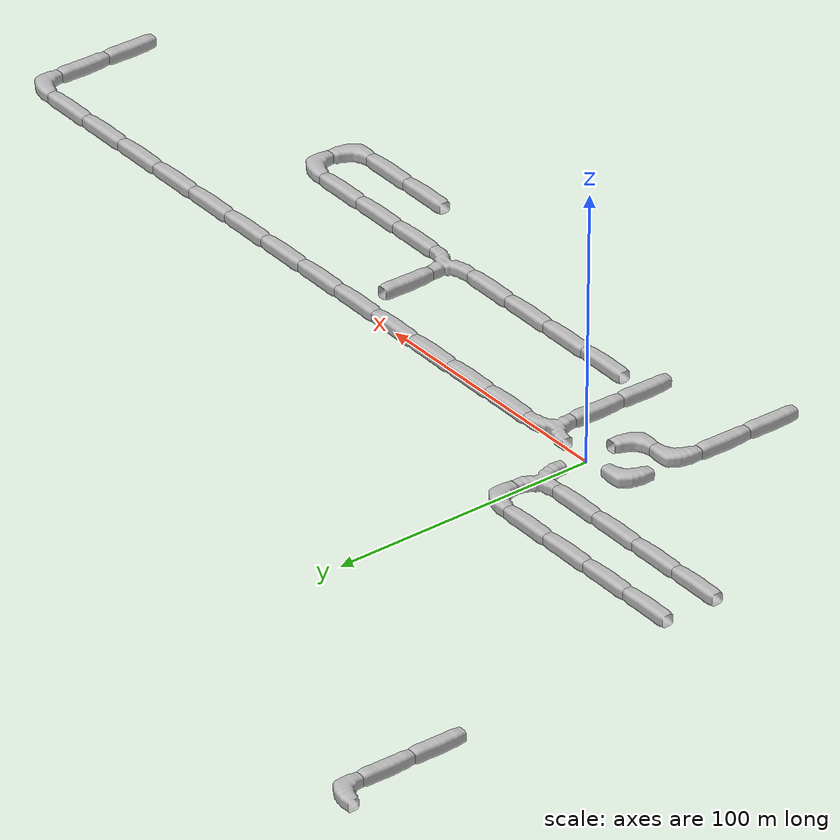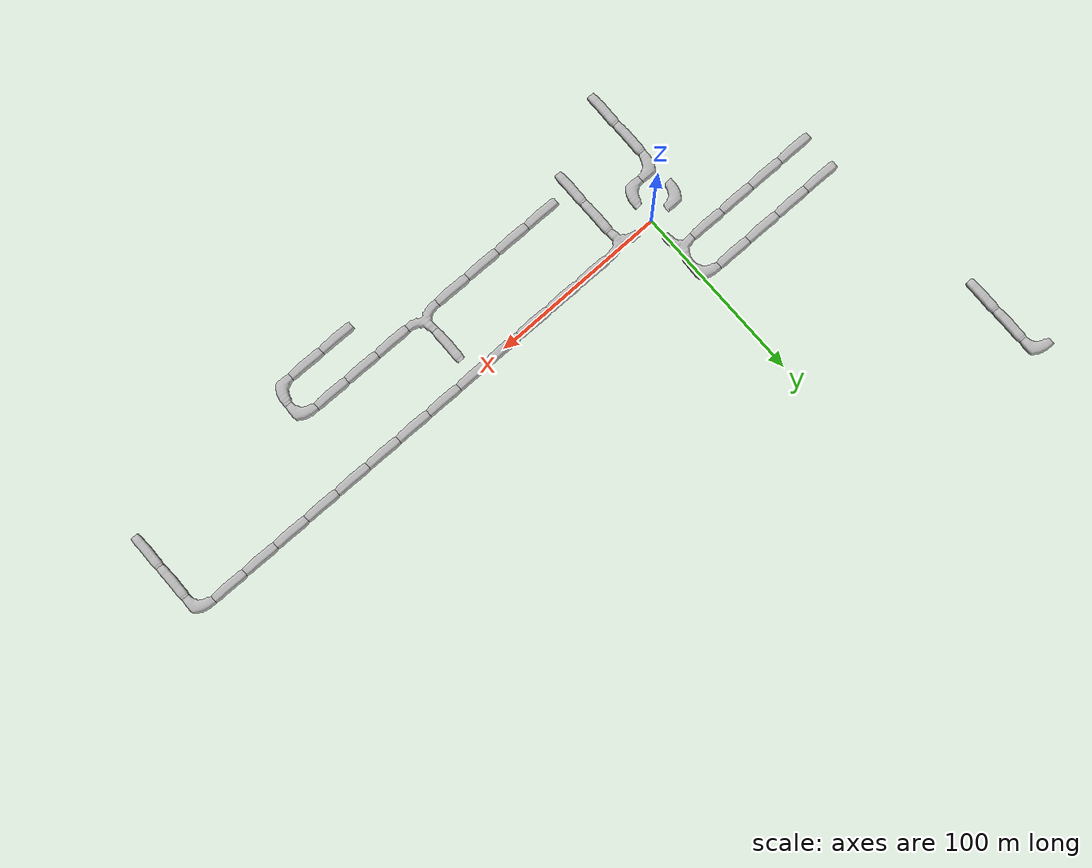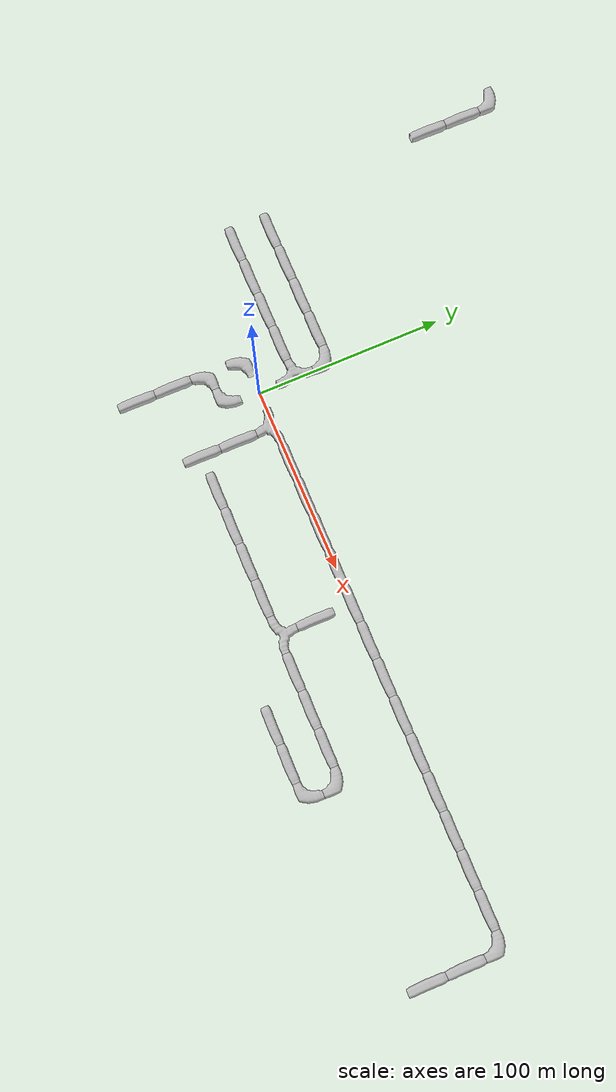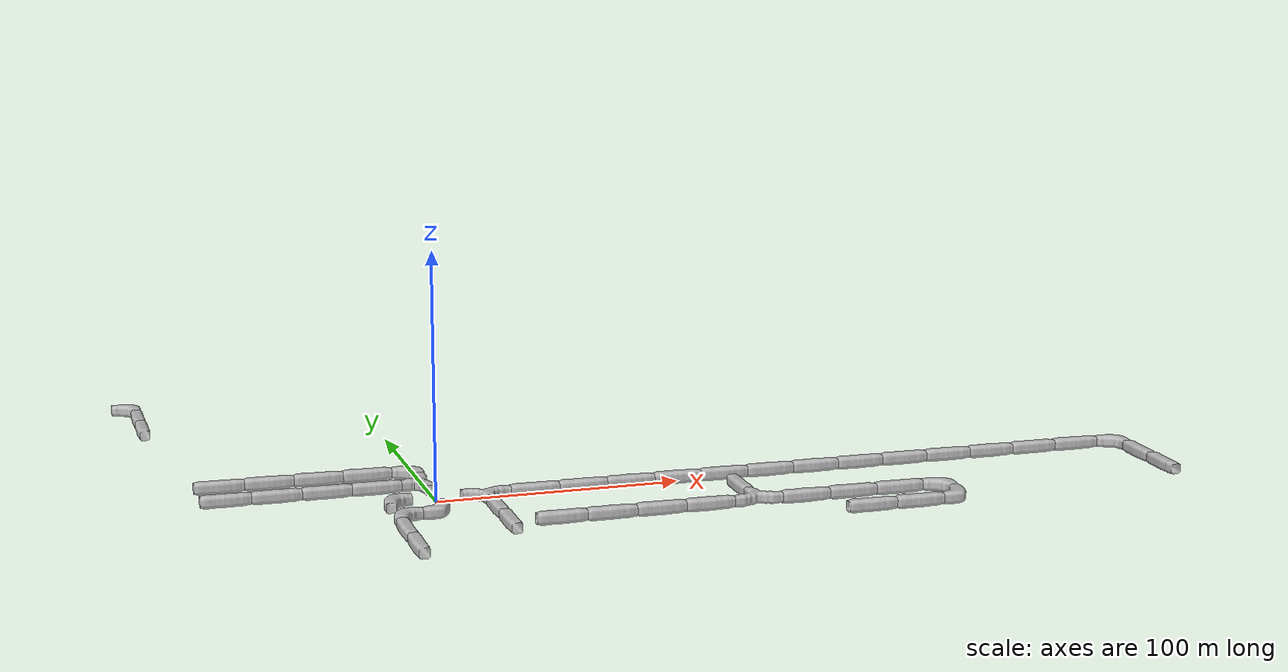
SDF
<sdf version="1.6">
 <world name="cave_4000">
  <include>
   <static>true</static>
   <name>cave_1_0</name>
   <pose>20 0 0 0 0 3.141592653589793</pose>
   <uri>model://cave_3way_20m</uri>
  </include>
  <include>
   <static>true</static>
   <name>cave_2_0</name>
   <pose>40 0 0 0 0 1.5707963267948966</pose>
   <uri>model://cave_straight_20m</uri>
  </include>
  <include>
   <static>true</static>
   <name>cave_3_0</name>
   <pose>60 0 0 0 0 1.5707963267948966</pose>
   <uri>model://cave_straight_20m</uri>
  </include>
  <include>
   <static>true</static>
   <name>cave_4_0</name>
   <pose>80 0 0 0 0 1.5707963267948966</pose>
   <uri>model://cave_straight_20m</uri>
  </include>
  <include>
   <static>true</static>
   <name>cave_5_0</name>
   <pose>100 0 0 0 0 1.5707963267948966</pose>
   <uri>model://cave_straight_20m</uri>
  </include>
  <include>
   <static>true</static>
   <name>cave_6_0</name>
   <pose>120 0 0 0 0 1.5707963267948966</pose>
   <uri>model://cave_straight_20m</uri>
  </include>
  <include>
   <static>true</static>
   <name>cave_7_0</name>
   <pose>140 0 0 0 0 1.5707963267948966</pose>
   <uri>model://cave_straight_20m</uri>
  </include>
  <include>
   <static>true</static>
   <name>cave_8_0</name>
   <pose>160 0 0 0 0 1.5707963267948966</pose>
   <uri>model://cave_straight_20m</uri>
  </include>
  <include>
   <static>true</static>
   <name>cave_9_0</name>
   <pose>180 0 0 0 0 1.5707963267948966</pose>
   <uri>model://cave_straight_20m</uri>
  </include>
  <include>
   <static>true</static>
   <name>cave_10_0</name>
   <pose>200 0 0 0 0 1.5707963267948966</pose>
   <uri>model://cave_straight_20m</uri>
  </include>
  <include>
   <static>true</static>
   <name>cave_11_0</name>
   <pose>220 0 0 0 0 1.5707963267948966</pose>
   <uri>model://cave_straight_20m</uri>
  </include>
  <include>
   <static>true</static>
   <name>cave_12_0</name>
   <pose>240 0 0 0 0 1.5707963267948966</pose>
   <uri>model://cave_straight_20m</uri>
  </include>
  <include>
   <static>true</static>
   <name>cave_13_0</name>
   <pose>260 0 0 0 0 1.5707963267948966</pose>
   <uri>model://cave_straight_20m</uri>
  </include>
  <include>
   <static>true</static>
   <name>cave_14_0</name>
   <pose>280 0 0 0 0 1.5707963267948966</pose>
   <uri>model://cave_straight_20m</uri>
  </include>
  <include>
   <static>true</static>
   <name>cave_15_0</name>
   <pose>300 0 0 0 0 3.141592653589793</pose>
   <uri>model://cave_L_20m</uri>
  </include>
  <include>
   <static>true</static>
   <name>cave_15_-1</name>
   <pose>300 -20 0 0 0 0.0</pose>
   <uri>model://cave_straight_20m</uri>
  </include>
  <include>
   <static>true</static>
   <name>cave_15_-2</name>
   <pose>300 -40 0 0 0 0.0</pose>
   <uri>model://cave_straight_20m</uri>
  </include>
  <include>
   <static>true</static>
   <name>cave_1_-1</name>
   <pose>20 -20 0 0 0 0.0</pose>
   <uri>model://cave_straight_20m</uri>
  </include>
  <include>
   <static>true</static>
   <name>cave_1_-2</name>
   <pose>20 -40 0 0 0 0.0</pose>
   <uri>model://cave_straight_20m</uri>
  </include>
  <include>
   <static>true</static>
   <name>cave_8_-3</name>
   <pose>160 -60 0 0 0 1.5707963267948966</pose>
   <uri>model://cave_straight_20m</uri>
  </include>
  <include>
   <static>true</static>
   <name>cave_9_-3</name>
   <pose>180 -60 0 0 0 1.5707963267948966</pose>
   <uri>model://cave_straight_20m</uri>
  </include>
  <include>
   <static>true</static>
   <name>cave_10_-3</name>
   <pose>200 -60 0 0 0 1.5707963267948966</pose>
   <uri>model://cave_L_20m</uri>
  </include>
  <include>
   <static>true</static>
   <name>cave_10_-2</name>
   <pose>200 -40 0 0 0 3.141592653589793</pose>
   <uri>model://cave_L_20m</uri>
  </include>
  <include>
   <static>true</static>
   <name>cave_9_-2</name>
   <pose>180 -40 0 0 0 1.5707963267948966</pose>
   <uri>model://cave_straight_20m</uri>
  </include>
  <include>
   <static>true</static>
   <name>cave_8_-2</name>
   <pose>160 -40 0 0 0 1.5707963267948966</pose>
   <uri>model://cave_straight_20m</uri>
  </include>
  <include>
   <static>true</static>
   <name>cave_7_-2</name>
   <pose>140 -40 0 0 0 1.5707963267948966</pose>
   <uri>model://cave_straight_20m</uri>
  </include>
  <include>
   <static>true</static>
   <name>cave_6_-2</name>
   <pose>120 -40 0 0 0 0.0</pose>
   <uri>model://cave_3way_20m</uri>
  </include>
  <include>
   <static>true</static>
   <name>cave_5_-2</name>
   <pose>100 -40 0 0 0 1.5707963267948966</pose>
   <uri>model://cave_straight_20m</uri>
  </include>
  <include>
   <static>true</static>
   <name>cave_4_-2</name>
   <pose>80 -40 0 0 0 1.5707963267948966</pose>
   <uri>model://cave_straight_20m</uri>
  </include>
  <include>
   <static>true</static>
   <name>cave_3_-2</name>
   <pose>60 -40 0 0 0 1.5707963267948966</pose>
   <uri>model://cave_straight_20m</uri>
  </include>
  <include>
   <static>true</static>
   <name>cave_2_-2</name>
   <pose>40 -40 0 0 0 1.5707963267948966</pose>
   <uri>model://cave_straight_20m</uri>
  </include>
  <include>
   <static>true</static>
   <name>cave_6_-1</name>
   <pose>120 -20 0 0 0 0.0</pose>
   <uri>model://cave_straight_20m</uri>
  </include>
  <include>
   <static>true</static>
   <name>cave_0_-1</name>
   <pose>0 -20 0 0 0 1.5707963267948966</pose>
   <uri>model://cave_L_20m</uri>
  </include>
  <include>
   <static>true</static>
   <name>cave_-1_-1</name>
   <pose>-20 -20 0 0 0 -1.5707963267948966</pose>
   <uri>model://cave_L_20m</uri>
  </include>
  <include>
   <static>true</static>
   <name>cave_-1_-2</name>
   <pose>-20 -40 0 0 0 0.0</pose>
   <uri>model://cave_straight_20m</uri>
  </include>
  <include>
   <static>true</static>
   <name>cave_-1_-3</name>
   <pose>-20 -60 0 0 0 0.0</pose>
   <uri>model://cave_straight_20m</uri>
  </include>
  <include>
   <static>true</static>
   <name>cave_-1_0</name>
   <pose>-20 0 0 0 0 -1.5707963267948966</pose>
   <uri>model://cave_L_20m</uri>
  </include>
  <include>
   <static>true</static>
   <name>cave_0_1</name>
   <pose>0 20 0 0 0 1.5707963267948966</pose>
   <uri>model://cave_3way_20m</uri>
  </include>
  <include>
   <static>true</static>
   <name>cave_-1_1</name>
   <pose>-20 20 0 0 0 1.5707963267948966</pose>
   <uri>model://cave_straight_20m</uri>
  </include>
  <include>
   <static>true</static>
   <name>cave_-2_1</name>
   <pose>-40 20 0 0 0 1.5707963267948966</pose>
   <uri>model://cave_straight_20m</uri>
  </include>
  <include>
   <static>true</static>
   <name>cave_-3_1</name>
   <pose>-60 20 0 0 0 1.5707963267948966</pose>
   <uri>model://cave_straight_20m</uri>
  </include>
  <include>
   <static>true</static>
   <name>cave_-4_1</name>
   <pose>-80 20 0 0 0 1.5707963267948966</pose>
   <uri>model://cave_straight_20m</uri>
  </include>
  <include>
   <static>true</static>
   <name>cave_0_2</name>
   <pose>0 40 0 0 0 3.141592653589793</pose>
   <uri>model://cave_L_20m</uri>
  </include>
  <include>
   <static>true</static>
   <name>cave_-1_2</name>
   <pose>-20 40 0 0 0 1.5707963267948966</pose>
   <uri>model://cave_straight_20m</uri>
  </include>
  <include>
   <static>true</static>
   <name>cave_-2_2</name>
   <pose>-40 40 0 0 0 1.5707963267948966</pose>
   <uri>model://cave_straight_20m</uri>
  </include>
  <include>
   <static>true</static>
   <name>cave_-3_2</name>
   <pose>-60 40 0 0 0 1.5707963267948966</pose>
   <uri>model://cave_straight_20m</uri>
  </include>
  <include>
   <static>true</static>
   <name>cave_-4_2</name>
   <pose>-80 40 0 0 0 1.5707963267948966</pose>
   <uri>model://cave_straight_20m</uri>
  </include>
  <include>
   <static>true</static>
   <name>cave_-5_7</name>
   <pose>-100 140 0 0 0 0.0</pose>
   <uri>model://cave_straight_20m</uri>
  </include>
  <include>
   <static>true</static>
   <name>cave_-5_8</name>
   <pose>-100 160 0 0 0 0.0</pose>
   <uri>model://cave_straight_20m</uri>
  </include>
  <include>
   <static>true</static>
   <name>cave_-5_9</name>
   <pose>-100 180 0 0 0 3.141592653589793</pose>
   <uri>model://cave_L_20m</uri>
  </include>
 </world>
</sdf>
